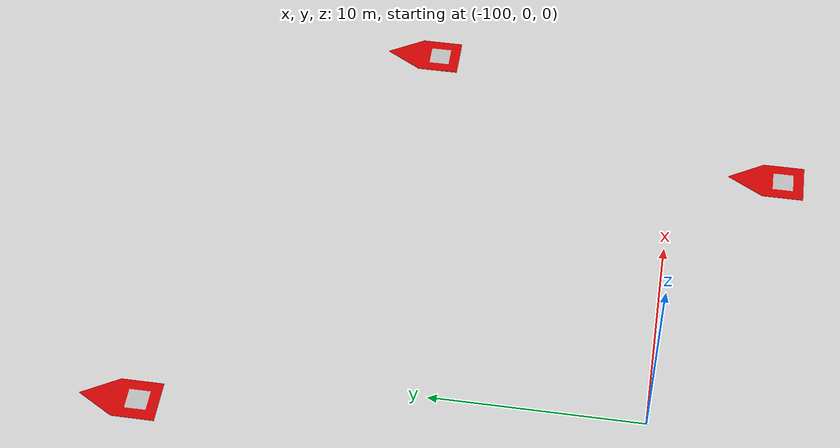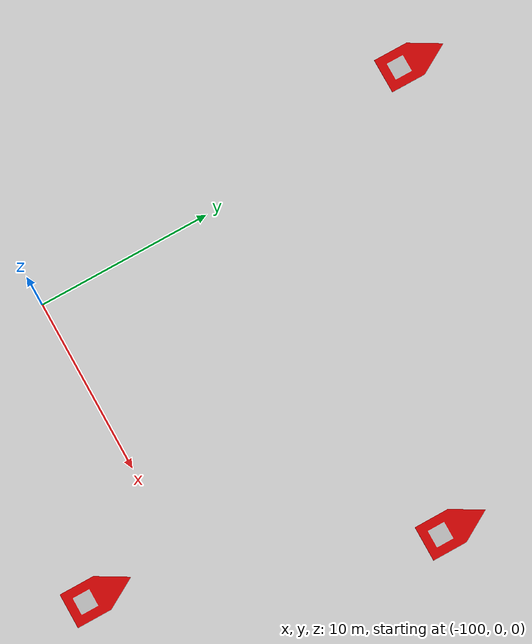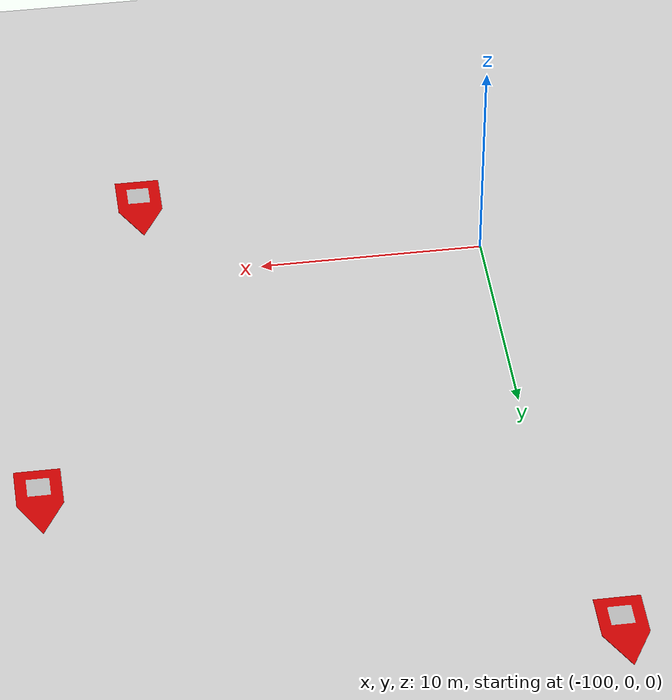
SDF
<sdf version="1.7">
 <world name="default">
  <model name="ground_plane">
   <static>1</static>
   <link name="link">
    <collision name="collision">
     <geometry><plane><normal>0 0 1</normal><size>5000 5000</size></plane></geometry>
     <surface><friction><ode><mu>1</mu><mu2>1</mu2></ode></friction></surface>
    </collision>
    <visual name="runway">
     <pose>0 0 0.005 0 0 -1.5707</pose>
     <cast_shadows>0</cast_shadows>
     <geometry><plane><normal>0 0 1</normal><size>1829 45</size></plane></geometry>
     <material>
      <script><uri>file://media/materials/scripts/gazebo.material</uri><name>Gazebo/Runway</name></script>
     </material>
    </visual>
    <visual name="grass">
     <pose>0 0 -0.1 0 -0 0</pose>
     <cast_shadows>0</cast_shadows>
     <geometry><plane><normal>0 0 1</normal><size>5000 5000</size></plane></geometry>
     <material>
      <script><uri>file://media/materials/scripts/gazebo.material</uri><name>Gazebo/Grass</name></script>
     </material>
    </visual>
   </link>
  </model>
  <model name="biao_12_0_clone_16_clone_0_clone_76">
   <link name="link_0">
    <inertial>
     <mass>1</mass>
     <inertia>
      <ixx>0.166667</ixx>
      <ixy>0</ixy>
      <ixz>0</ixz>
      <iyy>0.166667</iyy>
      <iyz>0</iyz>
      <izz>0.166667</izz>
     </inertia>
    </inertial>
    <visual name="visual">
     <geometry>
      <mesh><uri>/home/lzc/lzc-code/src/simulation/models/biao/12/12.dae</uri><scale>1 1 1</scale></mesh>
     </geometry>
    </visual>
    <collision name="collision">
     <geometry>
      <mesh><uri>/home/lzc/lzc-code/src/simulation/models/biao/12/12.dae</uri><scale>1 1 1</scale></mesh>
     </geometry>
     <surface>
      <friction>
       <ode><mu>1</mu><mu2>1</mu2><fdir1>0 0 0</fdir1><slip1>0</slip1><slip2>0</slip2></ode>
       <torsional>
        <coefficient>1</coefficient>
        <patch_radius>0</patch_radius>
        <surface_radius>0</surface_radius>
        <use_patch_radius>1</use_patch_radius>
        <ode><slip>0</slip></ode>
       </torsional>
      </friction>
      <bounce><restitution_coefficient>0</restitution_coefficient><threshold>1e+06</threshold></bounce>
      <contact>
       <collide_without_contact>0</collide_without_contact>
       <collide_without_contact_bitmask>1</collide_without_contact_bitmask>
       <collide_bitmask>1</collide_bitmask>
       <ode>
        <soft_cfm>0</soft_cfm>
        <soft_erp>0.2</soft_erp>
        <kp>1e+13</kp>
        <kd>1</kd>
        <max_vel>0.01</max_vel>
        <min_depth>0</min_depth>
       </ode>
       <bullet>
        <split_impulse>1</split_impulse>
        <split_impulse_penetration_threshold>-0.01</split_impulse_penetration_threshold>
        <soft_cfm>0</soft_cfm>
        <soft_erp>0.2</soft_erp>
        <kp>1e+13</kp>
        <kd>1</kd>
       </bullet>
      </contact>
     </surface>
    </collision>
   </link>
   <static>0</static>
   <pose>-85 -5.54319 0.011 0 -0 0</pose>
  </model>
  <model name="biao_12_0_clone_16_clone_0_clone_77">
   <link name="link_0">
    <inertial>
     <mass>1</mass>
     <inertia>
      <ixx>0.166667</ixx>
      <ixy>0</ixy>
      <ixz>0</ixz>
      <iyy>0.166667</iyy>
      <iyz>0</iyz>
      <izz>0.166667</izz>
     </inertia>
    </inertial>
    <visual name="visual">
     <geometry>
      <mesh><uri>/home/lzc/lzc-code/src/simulation/models/biao/12/12.dae</uri><scale>1 1 1</scale></mesh>
     </geometry>
    </visual>
    <collision name="collision">
     <geometry>
      <mesh><uri>/home/lzc/lzc-code/src/simulation/models/biao/12/12.dae</uri><scale>1 1 1</scale></mesh>
     </geometry>
     <surface>
      <friction>
       <ode><mu>1</mu><mu2>1</mu2><fdir1>0 0 0</fdir1><slip1>0</slip1><slip2>0</slip2></ode>
       <torsional>
        <coefficient>1</coefficient>
        <patch_radius>0</patch_radius>
        <surface_radius>0</surface_radius>
        <use_patch_radius>1</use_patch_radius>
        <ode><slip>0</slip></ode>
       </torsional>
      </friction>
      <bounce><restitution_coefficient>0</restitution_coefficient><threshold>1e+06</threshold></bounce>
      <contact>
       <collide_without_contact>0</collide_without_contact>
       <collide_without_contact_bitmask>1</collide_without_contact_bitmask>
       <collide_bitmask>1</collide_bitmask>
       <ode>
        <soft_cfm>0</soft_cfm>
        <soft_erp>0.2</soft_erp>
        <kp>1e+13</kp>
        <kd>1</kd>
        <max_vel>0.01</max_vel>
        <min_depth>0</min_depth>
       </ode>
       <bullet>
        <split_impulse>1</split_impulse>
        <split_impulse_penetration_threshold>-0.01</split_impulse_penetration_threshold>
        <soft_cfm>0</soft_cfm>
        <soft_erp>0.2</soft_erp>
        <kp>1e+13</kp>
        <kd>1</kd>
       </bullet>
      </contact>
     </surface>
    </collision>
   </link>
   <static>0</static>
   <pose>-79 12.5366 0.011 0 -0 0</pose>
  </model>
  <model name="biao_12_0_clone_16_clone_0_clone_119">
   <link name="link_0">
    <inertial>
     <mass>1</mass>
     <inertia>
      <ixx>0.166667</ixx>
      <ixy>0</ixy>
      <ixz>0</ixz>
      <iyy>0.166667</iyy>
      <iyz>0</iyz>
      <izz>0.166667</izz>
     </inertia>
    </inertial>
    <visual name="visual">
     <geometry>
      <mesh><uri>/home/lzc/lzc-code/src/simulation/models/biao/12/12.dae</uri><scale>1 1 1</scale></mesh>
     </geometry>
    </visual>
    <collision name="collision">
     <geometry>
      <mesh><uri>/home/lzc/lzc-code/src/simulation/models/biao/12/12.dae</uri><scale>1 1 1</scale></mesh>
     </geometry>
     <surface>
      <friction>
       <ode><mu>1</mu><mu2>1</mu2><fdir1>0 0 0</fdir1><slip1>0</slip1><slip2>0</slip2></ode>
       <torsional>
        <coefficient>1</coefficient>
        <patch_radius>0</patch_radius>
        <surface_radius>0</surface_radius>
        <use_patch_radius>1</use_patch_radius>
        <ode><slip>0</slip></ode>
       </torsional>
      </friction>
      <bounce><restitution_coefficient>0</restitution_coefficient><threshold>1e+06</threshold></bounce>
      <contact>
       <collide_without_contact>0</collide_without_contact>
       <collide_without_contact_bitmask>1</collide_without_contact_bitmask>
       <collide_bitmask>1</collide_bitmask>
       <ode>
        <soft_cfm>0</soft_cfm>
        <soft_erp>0.2</soft_erp>
        <kp>1e+13</kp>
        <kd>1</kd>
        <max_vel>0.01</max_vel>
        <min_depth>0</min_depth>
       </ode>
       <bullet>
        <split_impulse>1</split_impulse>
        <split_impulse_penetration_threshold>-0.01</split_impulse_penetration_threshold>
        <soft_cfm>0</soft_cfm>
        <soft_erp>0.2</soft_erp>
        <kp>1e+13</kp>
        <kd>1</kd>
       </bullet>
      </contact>
     </surface>
    </collision>
   </link>
   <static>0</static>
   <pose>-102 23 0.011 0 -0 0</pose>
  </model>
 </world>
</sdf>
